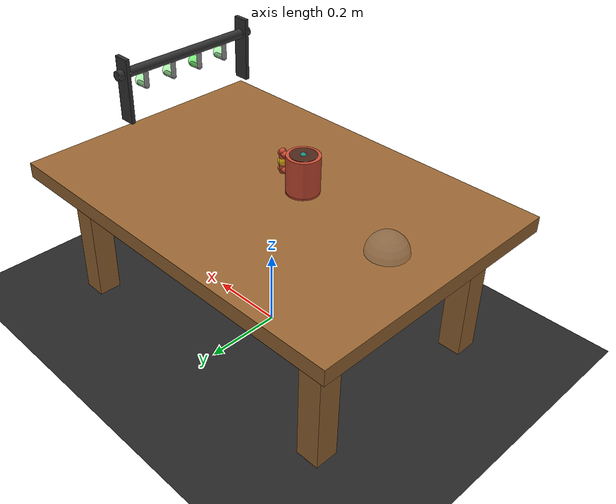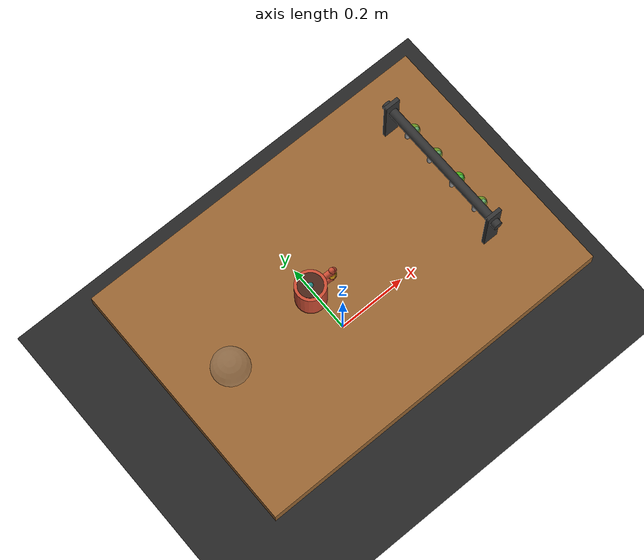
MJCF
<?xml version="1.0" encoding="utf-8"?>
<!--
  Hang mug on rack

  Parameter Space Definition:
  - mug: x, y position + 1 DOF rotation (yaw around handle)
  - rack: fixed position

  Range specification: 10cm variation for x,y
-->
<mujoco model="mug_rack_task">
  <compiler angle="radian" meshdir="meshes/" autolimits="true"/>

  <option timestep="0.002" gravity="0 0 -9.81" integrator="implicitfast">
    <flag contact="enable"/>
  </option>

  <default>
    <default class="mug">
      <geom rgba="0.8 0.3 0.2 1" friction="0.7 0.02 0.01"/>
    </default>
    <default class="rack">
      <geom rgba="0.2 0.2 0.2 1" friction="0.5 0.01 0.01"/>
    </default>
    <default class="hook">
      <geom rgba="0.6 0.6 0.6 1" friction="0.4 0.01 0.01"/>
    </default>
    <default class="table">
      <geom type="box" rgba="0.6 0.4 0.2 1"/>
    </default>
  </default>

  <asset>
    <texture name="grid" type="2d" builtin="checker" rgb1="0.1 0.1 0.1" rgb2="0.2 0.2 0.2" width="512" height="512"/>
    <material name="grid" texture="grid" texrepeat="8 8" reflectance="0.1"/>
    <texture name="wood" type="2d" builtin="flat" rgb1="0.6 0.4 0.2" rgb2="0.5 0.35 0.15" width="256" height="256"/>
    <material name="wood" texture="wood" reflectance="0.05"/>
    <texture name="ceramic" type="2d" builtin="gradient" rgb1="0.8 0.3 0.2" rgb2="0.6 0.2 0.15" width="256" height="256"/>
    <material name="ceramic" texture="ceramic" reflectance="0.15"/>
  </asset>

  <worldbody>
    <!-- Ground plane -->
    <geom name="floor" type="plane" size="2 2 0.1" material="grid" pos="0 0 0"/>

    <!-- Lighting -->
    <light name="light0" pos="0 0 3" dir="0 0 -1" diffuse="0.8 0.8 0.8"/>
    <light name="light1" pos="1 1 2" dir="-0.5 -0.5 -1" diffuse="0.4 0.4 0.4"/>

    <!-- Table surface -->
    <body name="table" pos="0 0 0.38">
      <geom name="table_top" class="table" size="0.5 0.35 0.02" material="wood"/>
      <geom name="table_leg1" class="table" pos="-0.4 -0.25 -0.19" size="0.03 0.03 0.17"/>
      <geom name="table_leg2" class="table" pos="0.4 -0.25 -0.19" size="0.03 0.03 0.17"/>
      <geom name="table_leg3" class="table" pos="-0.4 0.25 -0.19" size="0.03 0.03 0.17"/>
      <geom name="table_leg4" class="table" pos="0.4 0.25 -0.19" size="0.03 0.03 0.17"/>
    </body>

    <!-- ========== MUG RACK (FIXED) ========== -->
    <!-- Mounted above/behind table -->
    <body name="mug_rack" pos="0.3 0 0.65">
      <!-- Horizontal bar -->
      <geom name="rack_bar" class="rack" type="cylinder" size="0.012 0.20"
            pos="0 0 0" euler="1.571 0 0"/>

      <!-- Support brackets -->
      <geom name="bracket_left" class="rack" type="box" size="0.02 0.005 0.08"
            pos="0 -0.18 -0.04"/>
      <geom name="bracket_right" class="rack" type="box" size="0.02 0.005 0.08"
            pos="0 0.18 -0.04"/>

      <!-- Hooks (4 hooks spaced along the bar) -->
      <!-- Hook 1 -->
      <body name="hook_1" pos="0 -0.12 0">
        <geom name="hook_1_stem" class="hook" type="cylinder" size="0.006 0.025"
              pos="0 0 -0.025"/>
        <geom name="hook_1_curve" class="hook" type="capsule" size="0.006 0.015"
              pos="0.015 0 -0.05" euler="0 1.571 0"/>
        <site name="hook_1_target" pos="0.02 0 -0.04" size="0.015" rgba="0 1 0 0.3"/>
      </body>

      <!-- Hook 2 (TARGET HOOK) -->
      <body name="hook_2" pos="0 -0.04 0">
        <geom name="hook_2_stem" class="hook" type="cylinder" size="0.006 0.025"
              pos="0 0 -0.025"/>
        <geom name="hook_2_curve" class="hook" type="capsule" size="0.006 0.015"
              pos="0.015 0 -0.05" euler="0 1.571 0"/>
        <site name="hook_2_target" pos="0.02 0 -0.04" size="0.015" rgba="0 1 0 0.5"/>
      </body>

      <!-- Hook 3 -->
      <body name="hook_3" pos="0 0.04 0">
        <geom name="hook_3_stem" class="hook" type="cylinder" size="0.006 0.025"
              pos="0 0 -0.025"/>
        <geom name="hook_3_curve" class="hook" type="capsule" size="0.006 0.015"
              pos="0.015 0 -0.05" euler="0 1.571 0"/>
        <site name="hook_3_target" pos="0.02 0 -0.04" size="0.015" rgba="0 1 0 0.3"/>
      </body>

      <!-- Hook 4 -->
      <body name="hook_4" pos="0 0.12 0">
        <geom name="hook_4_stem" class="hook" type="cylinder" size="0.006 0.025"
              pos="0 0 -0.025"/>
        <geom name="hook_4_curve" class="hook" type="capsule" size="0.006 0.015"
              pos="0.015 0 -0.05" euler="0 1.571 0"/>
        <site name="hook_4_target" pos="0.02 0 -0.04" size="0.015" rgba="0 1 0 0.3"/>
      </body>
    </body>

    <!-- ========== MUG (PARAMETERIZABLE) ========== -->
    <body name="mug" pos="-0.10 0 0.44">
      <freejoint name="mug_joint"/>

      <!-- Mug body (hollow cylinder approximation) -->
      <geom name="mug_base" class="mug" type="cylinder" size="0.04 0.002"
            pos="0 0 0" mass="0.05" material="ceramic"/>
      <geom name="mug_wall" class="mug" type="cylinder" size="0.04 0.045"
            pos="0 0 0.047" mass="0.15" material="ceramic"/>
      <!-- Inner cavity (for visual, less mass) -->
      <geom name="mug_inner" type="cylinder" size="0.032 0.043"
            pos="0 0 0.05" rgba="0.3 0.15 0.1 1" mass="0.0"/>

      <!-- Handle -->
      <body name="mug_handle" pos="0.04 0 0.05">
        <!-- Handle is offset from mug body -->
        <geom name="handle_top" class="mug" type="capsule" size="0.008 0.015"
              pos="0.015 0 0.02" euler="0 1.571 0" mass="0.02"/>
        <geom name="handle_mid" class="mug" type="capsule" size="0.008 0.025"
              pos="0.025 0 0" euler="0 0 0" mass="0.02"/>
        <geom name="handle_bot" class="mug" type="capsule" size="0.008 0.015"
              pos="0.015 0 -0.02" euler="0 1.571 0" mass="0.02"/>

        <!-- Handle grasp site (where hook goes through) -->
        <site name="handle_hole" pos="0.025 0 0" size="0.012" rgba="1 1 0 0.5" type="sphere"/>
      </body>

      <!-- Tracking sites -->
      <site name="mug_center" pos="0 0 0.045" size="0.01" rgba="1 0 0 1"/>
      <site name="mug_top" pos="0 0 0.09" size="0.008" rgba="0 1 1 0.5"/>
      <site name="mug_bottom" pos="0 0 0" size="0.008" rgba="0 1 1 0.5"/>
    </body>

    <!-- ========== ROBOT PLACEHOLDER ========== -->
    <body name="robot_mount" pos="-0.35 0 0.40">
      <site name="robot_base" size="0.05" rgba="0.5 0.5 0.5 0.3"/>
    </body>

  </worldbody>

  <!-- Sensors -->
  <sensor>
    <framepos name="mug_pos" objtype="site" objname="mug_center"/>
    <framequat name="mug_quat" objtype="site" objname="mug_center"/>
    <framelinvel name="mug_linvel" objtype="site" objname="mug_center"/>
    <frameangvel name="mug_angvel" objtype="site" objname="mug_center"/>
    <framepos name="handle_pos" objtype="site" objname="handle_hole"/>
  </sensor>

  <!-- Keyframes for demonstration generation -->
  <keyframe>
    <!-- Initial: mug standing on table -->
    <key name="initial"
         qpos="-0.10 0 0.44 1 0 0 0"
         ctrl=""/>

    <!-- Grasped: mug lifted, handle facing outward (+x) -->
    <key name="grasped"
         qpos="-0.10 0 0.55 1 0 0 0"
         ctrl=""/>

    <!-- Pre-hang: mug above hook 2, handle aligned -->
    <key name="pre_hang"
         qpos="0.32 -0.04 0.65 0.707 0 -0.707 0"
         ctrl=""/>

    <!-- Hanging: mug on hook -->
    <key name="hanging"
         qpos="0.35 -0.04 0.58 0.707 0 -0.707 0"
         ctrl=""/>
  </keyframe>

</mujoco>
